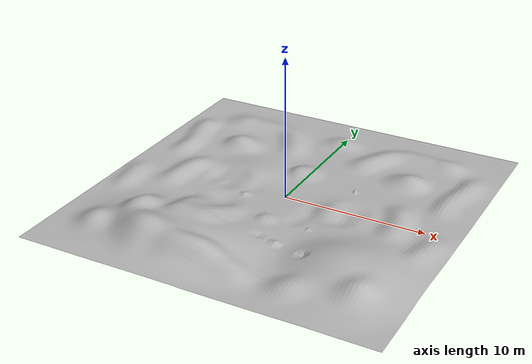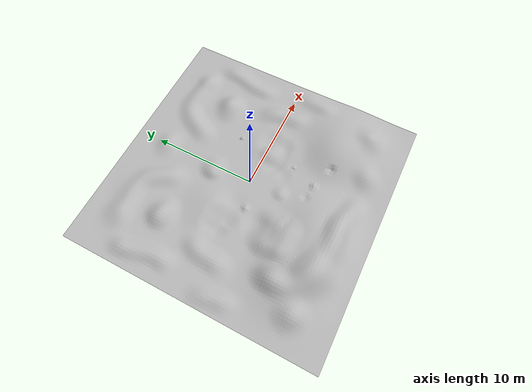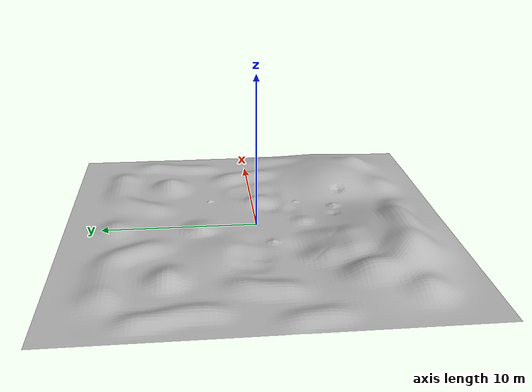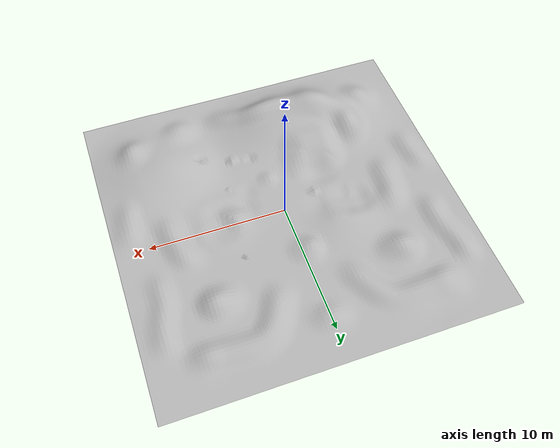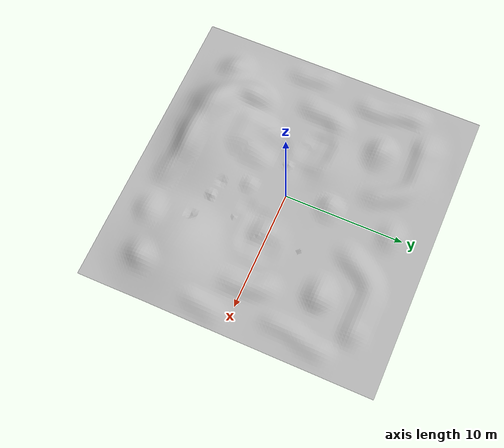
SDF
<?xml version="1.0" ?>

<sdf version="1.5">
    <world name="default">
        <!-- Target real time factor is the product of max_step_size and real_time_update_rate -->
        <!-- Negative real_time_update_rate means that Gazebo will run as fast as possible -->
        <physics type="ode">
            <type>world</type>
            <max_step_size>0.001</max_step_size>
            <real_time_update_rate>1000</real_time_update_rate>
            <iters>500</iters>
        </physics>
        <!-- A global light source -->
        <include>
            <uri>model://sun</uri>
        </include>
        <!-- A ground plane -->
        <include>
            <name>terrain_1</name>
            <uri>model://terrain_1</uri>
            <pose>0 0 0 0 0 0</pose>
        </include>
    </world>
</sdf>

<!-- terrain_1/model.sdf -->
<sdf version="1.5">
  <model name="terrain_1">
    <pose>0 0 0 0 0 0</pose>
    <static>true</static>
    <link name="body">
      <visual name="visual">
        <geometry>
          <mesh><uri>model://terrain_1/media/roughterrain.dae</uri></mesh>
        </geometry>
	<material>
          <script>
            <uri>model://terrain_1/media/scripts</uri>
            <uri>model://terrain_1/media/Textures</uri>
            <name>RepeatedGrass/Diffuse</name>
          </script>
        </material>
      </visual>
      <collision name="collision">
        <geometry>
          <mesh><uri>model://terrain_1/media/roughterrain.dae</uri></mesh>
        </geometry>
      </collision>
    </link>
  </model>
</sdf>
